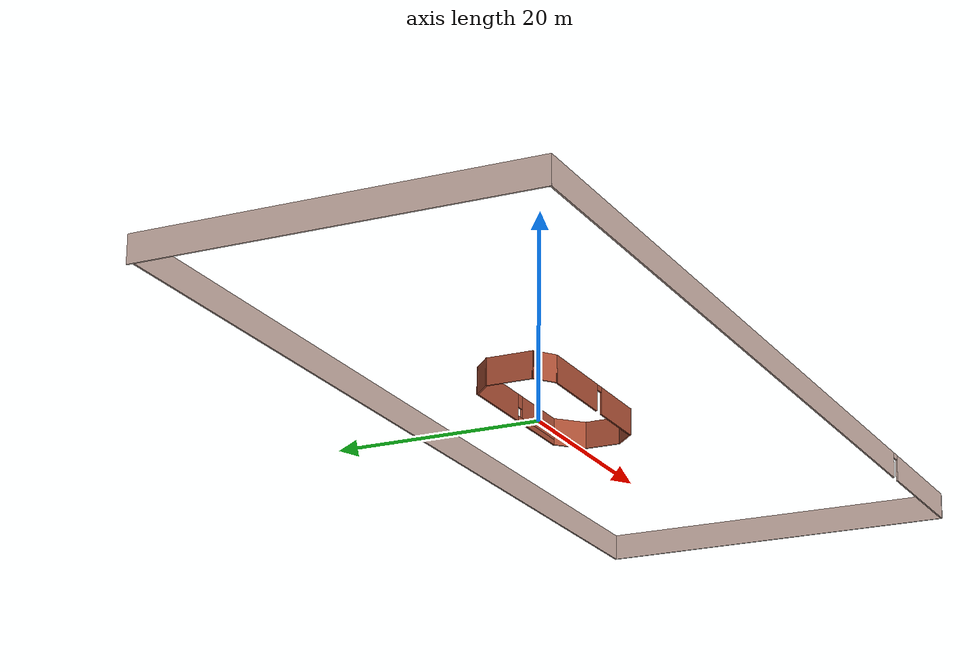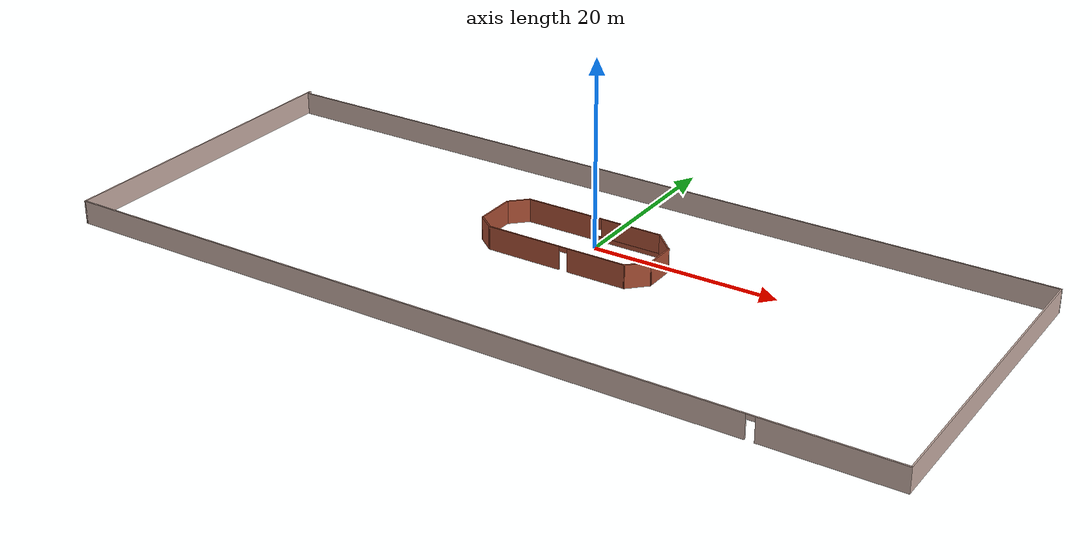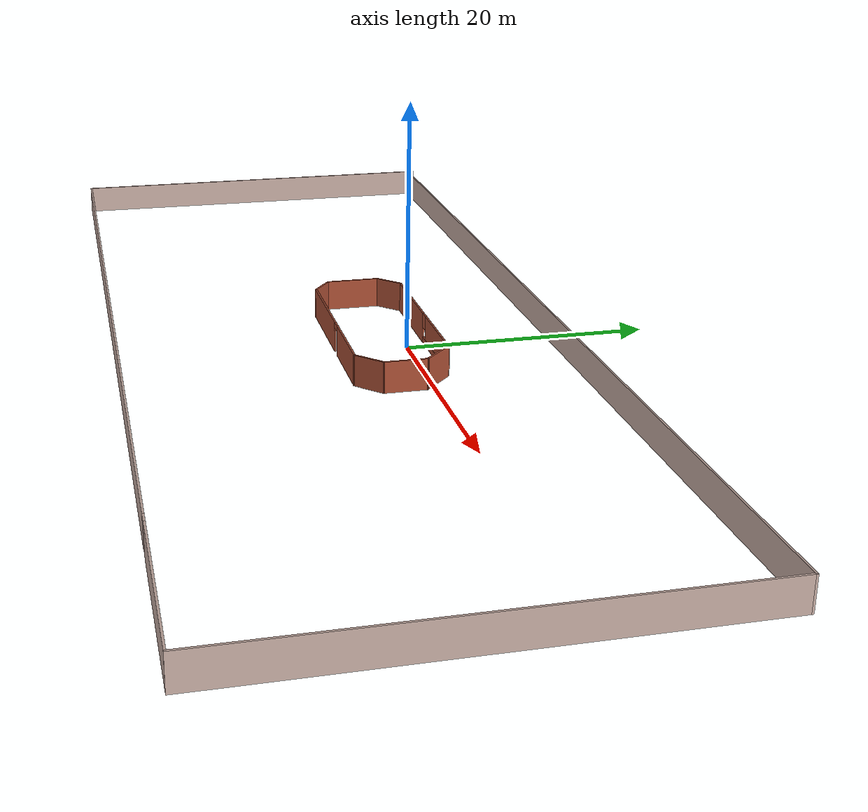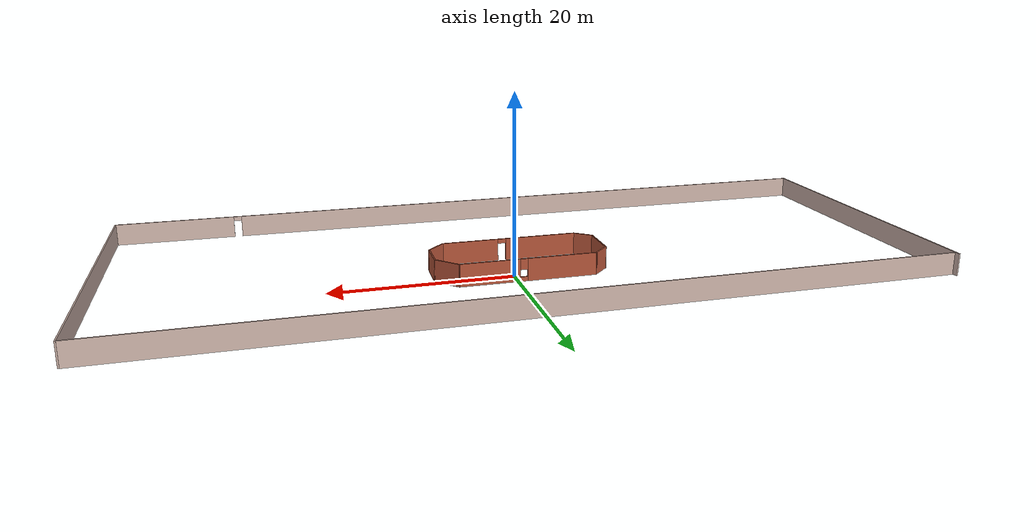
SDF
<?xml version='1.0'?>
<sdf version='1.6'>
  <model name='test_course'>
    <pose frame=''>-1.64015 -5.41158 0 0 -0 0</pose>
    <link name='Wall_22'>
      <pose frame=''>0.481774 7.006 0 0 -0 0</pose>
      <visual name='Wall_22_Visual_0'>
        <pose frame=''>-3.73862 0 1.25 0 -0 0</pose>
        <geometry>
          <box>
            <size>7.77276 0.15 2.5</size>
          </box>
        </geometry>
        <material>
          <script>
            <uri>file://media/materials/scripts/gazebo.material</uri>
            <name>Gazebo/Bricks</name>
          </script>
          <ambient>1 1 1 1</ambient>
        </material>
        <meta>
          <layer>0</layer>
        </meta>
      </visual>
      <collision name='Wall_22_Collision_0'>
        <geometry>
          <box>
            <size>7.77276 0.15 2.5</size>
          </box>
        </geometry>
        <pose frame=''>-3.73862 0 1.25 0 -0 0</pose>
      </collision>
      <visual name='Wall_22_Visual_1'>
        <pose frame=''>3.88638 0 0.25 0 -0 0</pose>
        <geometry>
          <box>
            <size>7.47724 0.15 0.5</size>
          </box>
        </geometry>
        <material>
          <script>
            <uri>file://media/materials/scripts/gazebo.material</uri>
            <name>Gazebo/Bricks</name>
          </script>
          <ambient>1 1 1 1</ambient>
        </material>
        <meta>
          <layer>0</layer>
        </meta>
      </visual>
      <collision name='Wall_22_Collision_1'>
        <geometry>
          <box>
            <size>7.47724 0.15 0.5</size>
          </box>
        </geometry>
        <pose frame=''>3.88638 0 0.25 0 -0 0</pose>
      </collision>
      <visual name='Wall_22_Visual_2'>
        <pose frame=''>4.28638 0 1.5 0 -0 0</pose>
        <geometry>
          <box>
            <size>6.67723 0.15 2</size>
          </box>
        </geometry>
        <material>
          <script>
            <uri>file://media/materials/scripts/gazebo.material</uri>
            <name>Gazebo/Bricks</name>
          </script>
          <ambient>1 1 1 1</ambient>
        </material>
        <meta>
          <layer>0</layer>
        </meta>
      </visual>
      <collision name='Wall_22_Collision_2'>
        <geometry>
          <box>
            <size>6.67723 0.15 2</size>
          </box>
        </geometry>
        <pose frame=''>4.28638 0 1.5 0 -0 0</pose>
      </collision>
      <visual name='Wall_22_Visual_3'>
        <pose frame=''>0.547765 0 1.9 0 -0 0</pose>
        <geometry>
          <box>
            <size>0.8 0.15 1.2</size>
          </box>
        </geometry>
        <material>
          <script>
            <uri>file://media/materials/scripts/gazebo.material</uri>
            <name>Gazebo/Bricks</name>
          </script>
          <ambient>1 1 1 1</ambient>
        </material>
        <meta>
          <layer>0</layer>
        </meta>
      </visual>
      <collision name='Wall_22_Collision_3'>
        <geometry>
          <box>
            <size>0.8 0.15 1.2</size>
          </box>
        </geometry>
        <pose frame=''>0.547765 0 1.9 0 -0 0</pose>
      </collision>
    </link>
    <link name='Wall_23'>
      <collision name='Wall_23_Collision'>
        <geometry>
          <box>
            <size>3.25 0.15 2.5</size>
          </box>
        </geometry>
        <pose frame=''>0 0 1.25 0 -0 0</pose>
      </collision>
      <visual name='Wall_23_Visual'>
        <pose frame=''>0 0 1.25 0 -0 0</pose>
        <geometry>
          <box>
            <size>3.25 0.15 2.5</size>
          </box>
        </geometry>
        <material>
          <script>
            <uri>file://media/materials/scripts/gazebo.material</uri>
            <name>Gazebo/Bricks</name>
          </script>
          <ambient>1 1 1 1</ambient>
        </material>
        <meta>
          <layer>0</layer>
        </meta>
      </visual>
      <pose frame=''>9.12779 5.90998 0 0 0 -0.785398</pose>
    </link>
    <link name='Wall_24'>
      <collision name='Wall_24_Collision'>
        <geometry>
          <box>
            <size>3.5 0.15 2.5</size>
          </box>
        </geometry>
        <pose frame=''>0 0 1.25 0 -0 0</pose>
      </collision>
      <visual name='Wall_24_Visual'>
        <pose frame=''>0 0 1.25 0 -0 0</pose>
        <geometry>
          <box>
            <size>3.5 0.15 2.5</size>
          </box>
        </geometry>
        <material>
          <script>
            <uri>file://media/materials/scripts/gazebo.material</uri>
            <name>Gazebo/Bricks</name>
          </script>
          <ambient>1 1 1 1</ambient>
        </material>
        <meta>
          <layer>0</layer>
        </meta>
      </visual>
      <pose frame=''>10.2238 3.13897 0 0 0 -1.5708</pose>
    </link>
    <link name='Wall_25'>
      <collision name='Wall_25_Collision'>
        <geometry>
          <box>
            <size>2.75 0.15 2.5</size>
          </box>
        </geometry>
        <pose frame=''>0 0 1.25 0 -0 0</pose>
      </collision>
      <visual name='Wall_25_Visual'>
        <pose frame=''>0 0 1.25 0 -0 0</pose>
        <geometry>
          <box>
            <size>2.75 0.15 2.5</size>
          </box>
        </geometry>
        <material>
          <script>
            <uri>file://media/materials/scripts/gazebo.material</uri>
            <name>Gazebo/Bricks</name>
          </script>
          <ambient>1 1 1 1</ambient>
        </material>
        <meta>
          <layer>0</layer>
        </meta>
      </visual>
      <pose frame=''>9.30457 0.54473 0 0 0 -2.35619</pose>
    </link>
    <link name='Wall_26'>
      <pose frame=''>0.710327 -0.374508 0 0 -0 3.14159</pose>
      <visual name='Wall_26_Visual_0'>
        <pose frame=''>-4.55046 0 1.25 0 -0 0</pose>
        <geometry>
          <box>
            <size>6.39908 0.15 2.5</size>
          </box>
        </geometry>
        <material>
          <script>
            <uri>file://media/materials/scripts/gazebo.material</uri>
            <name>Gazebo/Bricks</name>
          </script>
          <ambient>1 1 1 1</ambient>
        </material>
        <meta>
          <layer>0</layer>
        </meta>
      </visual>
      <collision name='Wall_26_Collision_0'>
        <geometry>
          <box>
            <size>6.39908 0.15 2.5</size>
          </box>
        </geometry>
        <pose frame=''>-4.55046 0 1.25 0 -0 0</pose>
      </collision>
      <visual name='Wall_26_Visual_1'>
        <pose frame=''>3.64954 0 1.25 0 -0 0</pose>
        <geometry>
          <box>
            <size>8.20092 0.15 2.5</size>
          </box>
        </geometry>
        <material>
          <script>
            <uri>file://media/materials/scripts/gazebo.material</uri>
            <name>Gazebo/Bricks</name>
          </script>
          <ambient>1 1 1 1</ambient>
        </material>
        <meta>
          <layer>0</layer>
        </meta>
      </visual>
      <collision name='Wall_26_Collision_1'>
        <geometry>
          <box>
            <size>8.20092 0.15 2.5</size>
          </box>
        </geometry>
        <pose frame=''>3.64954 0 1.25 0 -0 0</pose>
      </collision>
      <visual name='Wall_26_Visual_2'>
        <pose frame=''>-0.900921 0 2.25 0 -0 0</pose>
        <geometry>
          <box>
            <size>0.9 0.15 0.5</size>
          </box>
        </geometry>
        <material>
          <script>
            <uri>file://media/materials/scripts/gazebo.material</uri>
            <name>Gazebo/Bricks</name>
          </script>
          <ambient>1 1 1 1</ambient>
        </material>
        <meta>
          <layer>0</layer>
        </meta>
      </visual>
      <collision name='Wall_26_Collision_2'>
        <geometry>
          <box>
            <size>0.9 0.15 0.5</size>
          </box>
        </geometry>
        <pose frame=''>-0.900921 0 2.25 0 -0 0</pose>
      </collision>
    </link>
    <link name='Wall_30'>
      <collision name='Wall_30_Collision'>
        <geometry>
          <box>
            <size>2.5 0.15 2.5</size>
          </box>
        </geometry>
        <pose frame=''>0 0 1.25 0 -0 0</pose>
      </collision>
      <visual name='Wall_30_Visual'>
        <pose frame=''>0 0 1.25 0 -0 0</pose>
        <geometry>
          <box>
            <size>2.5 0.15 2.5</size>
          </box>
        </geometry>
        <material>
          <script>
            <uri>file://media/materials/scripts/gazebo.material</uri>
            <name>Gazebo/Bricks</name>
          </script>
          <ambient>1 1 1 1</ambient>
        </material>
        <meta>
          <layer>0</layer>
        </meta>
      </visual>
      <pose frame=''>-7.89908 6.17515 0 0 0 -2.35619</pose>
    </link>
    <link name='Wall_31'>
      <collision name='Wall_31_Collision'>
        <geometry>
          <box>
            <size>4.5 0.15 2.5</size>
          </box>
        </geometry>
        <pose frame=''>0 0 1.25 0 -0 0</pose>
      </collision>
      <visual name='Wall_31_Visual'>
        <pose frame=''>0 0 1.25 0 -0 0</pose>
        <geometry>
          <box>
            <size>4.5 0.15 2.5</size>
          </box>
        </geometry>
        <material>
          <script>
            <uri>file://media/materials/scripts/gazebo.material</uri>
            <name>Gazebo/Bricks</name>
          </script>
          <ambient>1 1 1 1</ambient>
        </material>
        <meta>
          <layer>0</layer>
        </meta>
      </visual>
      <pose frame=''>-8.72993 3.1693 0 0 0 -1.5708</pose>
    </link>
    <link name='Wall_32'>
      <collision name='Wall_32_Collision'>
        <geometry>
          <box>
            <size>2.38378 0.15 2.5</size>
          </box>
        </geometry>
        <pose frame=''>0 0 1.25 0 -0 0</pose>
      </collision>
      <visual name='Wall_32_Visual'>
        <pose frame=''>0 0 1.25 0 -0 0</pose>
        <geometry>
          <box>
            <size>2.38378 0.15 2.5</size>
          </box>
        </geometry>
        <material>
          <script>
            <uri>file://media/materials/scripts/gazebo.material</uri>
            <name>Gazebo/Bricks</name>
          </script>
          <ambient>1 1 1 1</ambient>
        </material>
        <meta>
          <layer>0</layer>
        </meta>
      </visual>
      <pose frame=''>-7.8473 0.309896 0 0 0 -0.65957</pose>
    </link>
    <link name='Wall_34'>
      <collision name='Wall_34_Collision'>
        <geometry>
          <box>
            <size>35.5 0.15 2.5</size>
          </box>
        </geometry>
        <pose frame=''>0 0 1.25 0 -0 0</pose>
      </collision>
      <visual name='Wall_34_Visual'>
        <pose frame=''>0 0 1.25 0 -0 0</pose>
        <geometry>
          <box>
            <size>35.5 0.15 2.5</size>
          </box>
        </geometry>
        <material>
          <script>
            <uri>file://media/materials/scripts/gazebo.material</uri>
            <name>Gazebo/Grey</name>
          </script>
          <ambient>0.760784 0.662745 0.627451 1</ambient>
        </material>
        <meta>
          <layer>0</layer>
        </meta>
      </visual>
      <pose frame=''>-44.55 0 0 0 0 -1.5708</pose>
    </link>
    <link name='Wall_35'>
      <pose frame=''>0 -17.675 0 0 -0 0</pose>
      <visual name='Wall_35_Visual_0'>
        <pose frame=''>-7.22805 0 1.25 0 -0 0</pose>
        <geometry>
          <box>
            <size>74.7939 0.15 2.5</size>
          </box>
        </geometry>
        <material>
          <script>
            <uri>file://media/materials/scripts/gazebo.material</uri>
            <name>Gazebo/Grey</name>
          </script>
          <ambient>0.760784 0.662745 0.627451 1</ambient>
        </material>
        <meta>
          <layer>0</layer>
        </meta>
      </visual>
      <collision name='Wall_35_Collision_0'>
        <geometry>
          <box>
            <size>74.7939 0.15 2.5</size>
          </box>
        </geometry>
        <pose frame=''>-7.22805 0 1.25 0 -0 0</pose>
      </collision>
      <visual name='Wall_35_Visual_1'>
        <pose frame=''>37.847 0 1.25 0 -0 0</pose>
        <geometry>
          <box>
            <size>13.5561 0.15 2.5</size>
          </box>
        </geometry>
        <material>
          <script>
            <uri>file://media/materials/scripts/gazebo.material</uri>
            <name>Gazebo/Grey</name>
          </script>
          <ambient>0.760784 0.662745 0.627451 1</ambient>
        </material>
        <meta>
          <layer>0</layer>
        </meta>
      </visual>
      <collision name='Wall_35_Collision_1'>
        <geometry>
          <box>
            <size>13.5561 0.15 2.5</size>
          </box>
        </geometry>
        <pose frame=''>37.847 0 1.25 0 -0 0</pose>
      </collision>
      <visual name='Wall_35_Visual_2'>
        <pose frame=''>30.6189 0 2.25 0 -0 0</pose>
        <geometry>
          <box>
            <size>0.9 0.15 0.5</size>
          </box>
        </geometry>
        <material>
          <script>
            <uri>file://media/materials/scripts/gazebo.material</uri>
            <name>Gazebo/Grey</name>
          </script>
          <ambient>0.760784 0.662745 0.627451 1</ambient>
        </material>
        <meta>
          <layer>0</layer>
        </meta>
      </visual>
      <collision name='Wall_35_Collision_2'>
        <geometry>
          <box>
            <size>0.9 0.15 0.5</size>
          </box>
        </geometry>
        <pose frame=''>30.6189 0 2.25 0 -0 0</pose>
      </collision>
    </link>
    <link name='Wall_36'>
      <collision name='Wall_36_Collision'>
        <geometry>
          <box>
            <size>35 0.15 2.5</size>
          </box>
        </geometry>
        <pose frame=''>0 0 1.25 0 -0 0</pose>
      </collision>
      <visual name='Wall_36_Visual'>
        <pose frame=''>0 0 1.25 0 -0 0</pose>
        <geometry>
          <box>
            <size>35 0.15 2.5</size>
          </box>
        </geometry>
        <material>
          <script>
            <uri>file://media/materials/scripts/gazebo.material</uri>
            <name>Gazebo/Grey</name>
          </script>
          <ambient>0.760784 0.662745 0.627451 1</ambient>
        </material>
        <meta>
          <layer>0</layer>
        </meta>
      </visual>
      <pose frame=''>44.55 -0.25 0 0 -0 1.5708</pose>
    </link>
    <link name='Wall_37'>
      <collision name='Wall_37_Collision'>
        <geometry>
          <box>
            <size>89 0.15 2.5</size>
          </box>
        </geometry>
        <pose frame=''>0 0 1.25 0 -0 0</pose>
      </collision>
      <visual name='Wall_37_Visual'>
        <pose frame=''>0 0 1.25 0 -0 0</pose>
        <geometry>
          <box>
            <size>89 0.15 2.5</size>
          </box>
        </geometry>
        <material>
          <script>
            <uri>file://media/materials/scripts/gazebo.material</uri>
            <name>Gazebo/Grey</name>
          </script>
          <ambient>0.760784 0.662745 0.627451 1</ambient>
        </material>
        <meta>
          <layer>0</layer>
        </meta>
      </visual>
      <pose frame=''>0.125 17.175 0 0 -0 3.14159</pose>
    </link>
    <static>1</static>
  </model>
</sdf>
